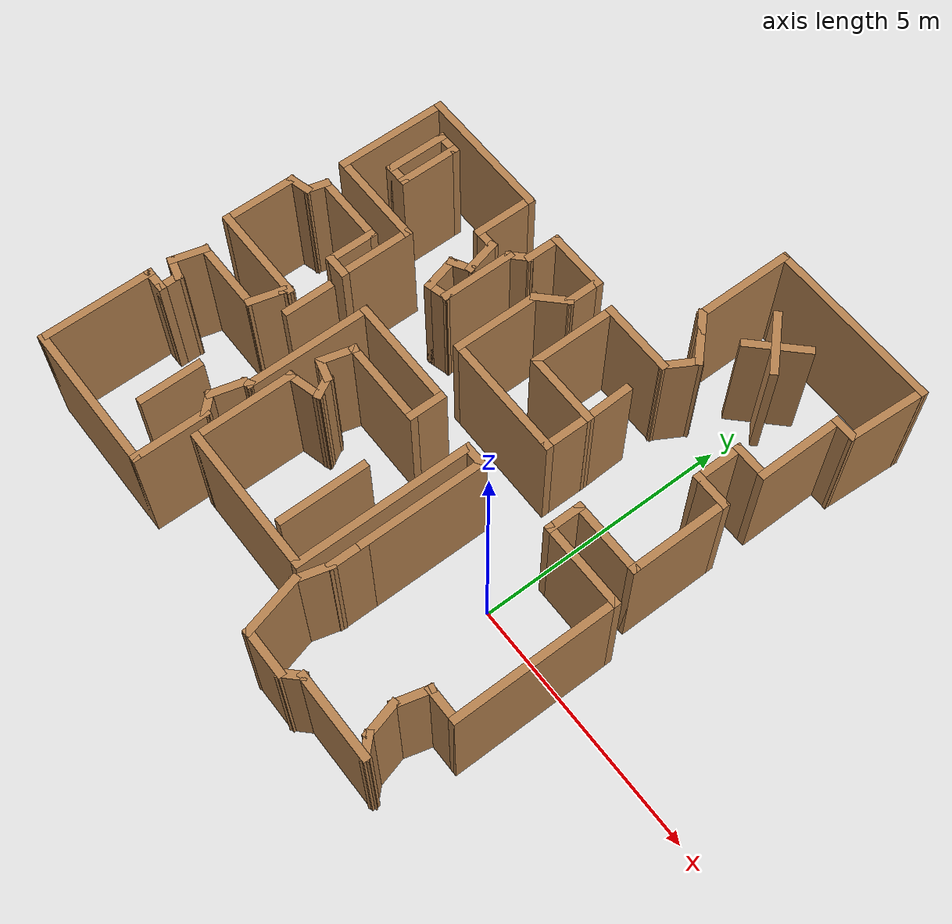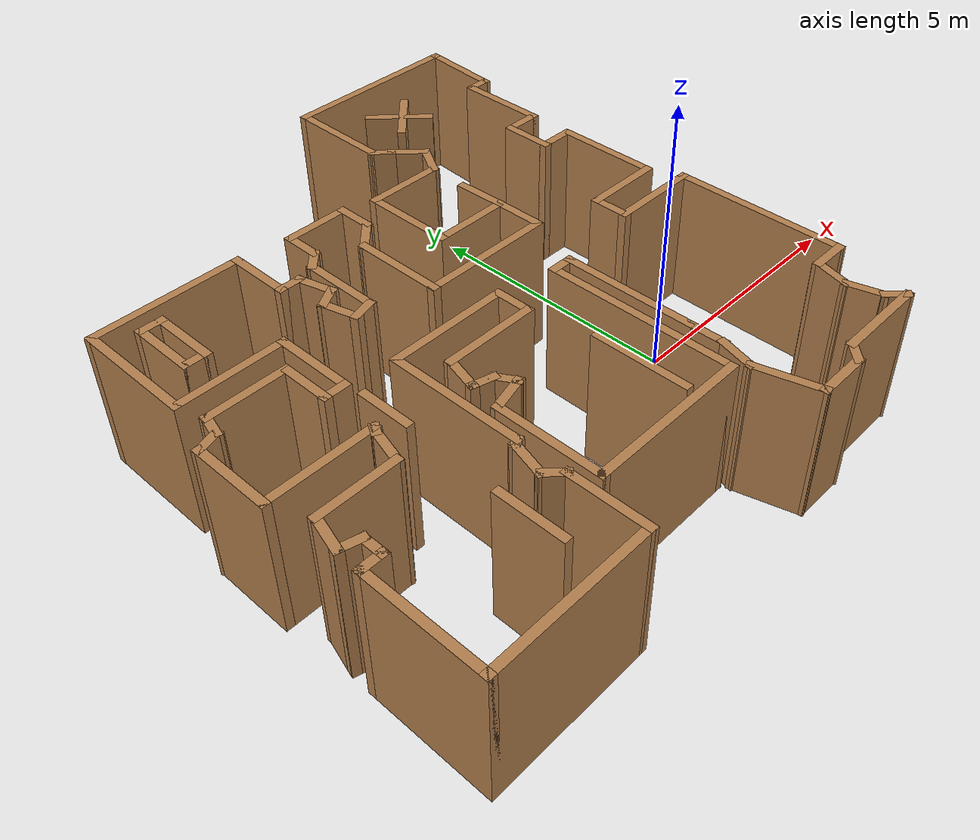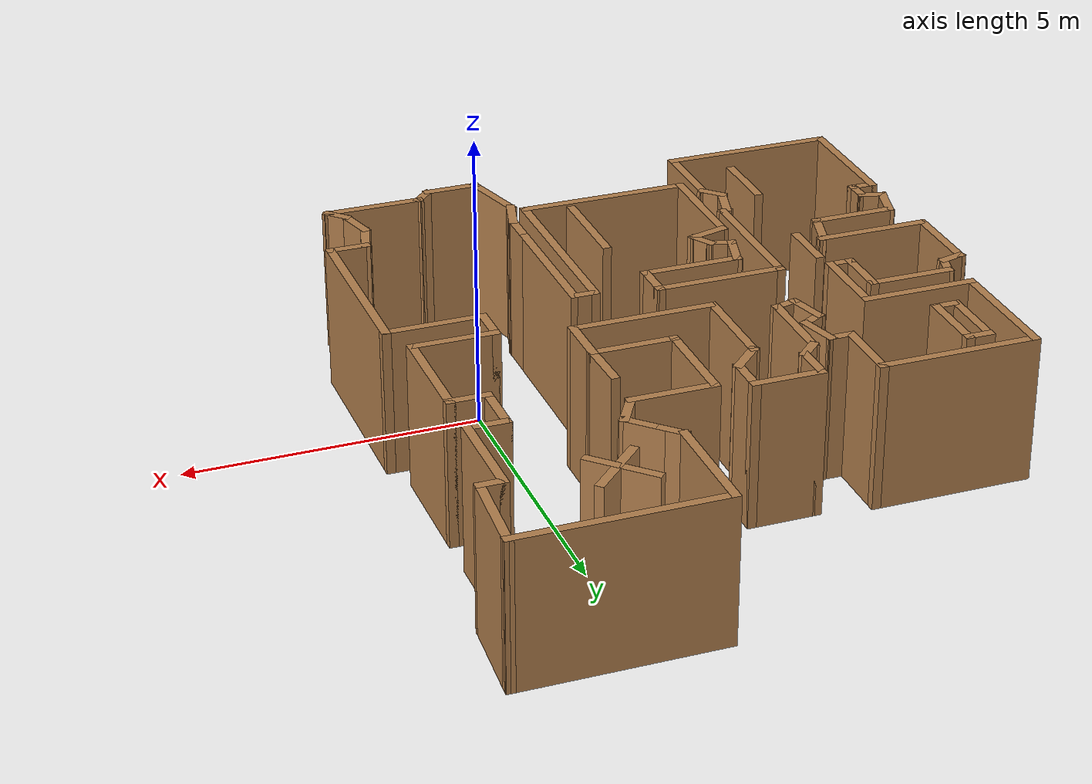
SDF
<sdf version="1.6">
 <model name="map_22">
  <pose>-2.87672 1.83975 0 0 -0 0</pose>
  <link name="Wall_101">
   <collision name="Wall_101_Collision">
    <geometry><box><size>1 0.15 2.5</size></box></geometry>
    <pose>0 0 1.25 0 -0 0</pose>
   </collision>
   <visual name="Wall_101_Visual">
    <pose>0 0 1.25 0 -0 0</pose>
    <geometry><box><size>1 0.15 2.5</size></box></geometry>
    <material>
     <script><uri>file://media/materials/scripts/gazebo.material</uri><name>Gazebo/Wood</name></script>
     <ambient>1 1 1 1</ambient>
    </material>
    <meta><layer>0</layer></meta>
   </visual>
   <pose>-2.71535 -1.36407 0 0 -0 -1.5708</pose>
  </link>
  <link name="Wall_103">
   <collision name="Wall_103_Collision">
    <geometry><box><size>1.25 0.15 2.5</size></box></geometry>
    <pose>0 0 1.25 0 -0 0</pose>
   </collision>
   <visual name="Wall_103_Visual">
    <pose>0 0 1.25 0 -0 0</pose>
    <geometry><box><size>1.25 0.15 2.5</size></box></geometry>
    <material>
     <script><uri>file://media/materials/scripts/gazebo.material</uri><name>Gazebo/Wood</name></script>
     <ambient>1 1 1 1</ambient>
    </material>
    <meta><layer>0</layer></meta>
   </visual>
   <pose>-2.76855 -4.09589 0 0 -0 -1.5708</pose>
  </link>
  <link name="Wall_105">
   <collision name="Wall_105_Collision">
    <geometry><box><size>1.75 0.15 2.5</size></box></geometry>
    <pose>0 0 1.25 0 -0 0</pose>
   </collision>
   <visual name="Wall_105_Visual">
    <pose>0 0 1.25 0 -0 0</pose>
    <geometry><box><size>1.75 0.15 2.5</size></box></geometry>
    <material>
     <script><uri>file://media/materials/scripts/gazebo.material</uri><name>Gazebo/Wood</name></script>
     <ambient>1 1 1 1</ambient>
    </material>
    <meta><layer>0</layer></meta>
   </visual>
   <pose>0.423476 -3.28189 0 0 -0 -1.5708</pose>
  </link>
  <link name="Wall_107">
   <collision name="Wall_107_Collision">
    <geometry><box><size>0.987992 0.15 2.5</size></box></geometry>
    <pose>0 0 1.25 0 -0 0</pose>
   </collision>
   <visual name="Wall_107_Visual">
    <pose>0 0 1.25 0 -0 0</pose>
    <geometry><box><size>0.987992 0.15 2.5</size></box></geometry>
    <material>
     <script><uri>file://media/materials/scripts/gazebo.material</uri><name>Gazebo/Wood</name></script>
     <ambient>1 1 1 1</ambient>
    </material>
    <meta><layer>0</layer></meta>
   </visual>
   <pose>1.92687 1.35538 0 0 -0 -1.53789</pose>
  </link>
  <link name="Wall_109">
   <collision name="Wall_109_Collision">
    <geometry><box><size>1.25 0.15 2.5</size></box></geometry>
    <pose>0 0 1.25 0 -0 0</pose>
   </collision>
   <visual name="Wall_109_Visual">
    <pose>0 0 1.25 0 -0 0</pose>
    <geometry><box><size>1.25 0.15 2.5</size></box></geometry>
    <material>
     <script><uri>file://media/materials/scripts/gazebo.material</uri><name>Gazebo/Wood</name></script>
     <ambient>1 1 1 1</ambient>
    </material>
    <meta><layer>0</layer></meta>
   </visual>
   <pose>-4.04536 1.91575 0 0 -0 -1.5708</pose>
  </link>
  <link name="Wall_11">
   <collision name="Wall_11_Collision">
    <geometry><box><size>1.5 0.15 2.5</size></box></geometry>
    <pose>0 0 1.25 0 -0 0</pose>
   </collision>
   <visual name="Wall_11_Visual">
    <pose>0 0 1.25 0 -0 0</pose>
    <geometry><box><size>1.5 0.15 2.5</size></box></geometry>
    <material>
     <script><uri>file://media/materials/scripts/gazebo.material</uri><name>Gazebo/Wood</name></script>
     <ambient>1 1 1 1</ambient>
    </material>
    <meta><layer>0</layer></meta>
   </visual>
   <pose>1.26566 2.53661 0 0 -0 3.14159</pose>
  </link>
  <link name="Wall_110">
   <collision name="Wall_110_Collision">
    <geometry><box><size>0.5 0.15 2.5</size></box></geometry>
    <pose>0 0 1.25 0 -0 0</pose>
   </collision>
   <visual name="Wall_110_Visual">
    <pose>0 0 1.25 0 -0 0</pose>
    <geometry><box><size>0.5 0.15 2.5</size></box></geometry>
    <material>
     <script><uri>file://media/materials/scripts/gazebo.material</uri><name>Gazebo/Wood</name></script>
     <ambient>1 1 1 1</ambient>
    </material>
    <meta><layer>0</layer></meta>
   </visual>
   <pose>-3.87036 1.36575 0 0 -0 0</pose>
  </link>
  <link name="Wall_111">
   <collision name="Wall_111_Collision">
    <geometry><box><size>1.25 0.15 2.5</size></box></geometry>
    <pose>0 0 1.25 0 -0 0</pose>
   </collision>
   <visual name="Wall_111_Visual">
    <pose>0 0 1.25 0 -0 0</pose>
    <geometry><box><size>1.25 0.15 2.5</size></box></geometry>
    <material>
     <script><uri>file://media/materials/scripts/gazebo.material</uri><name>Gazebo/Wood</name></script>
     <ambient>1 1 1 1</ambient>
    </material>
    <meta><layer>0</layer></meta>
   </visual>
   <pose>-3.69536 1.91575 0 0 -0 1.5708</pose>
  </link>
  <link name="Wall_112">
   <collision name="Wall_112_Collision">
    <geometry><box><size>0.5 0.15 2.5</size></box></geometry>
    <pose>0 0 1.25 0 -0 0</pose>
   </collision>
   <visual name="Wall_112_Visual">
    <pose>0 0 1.25 0 -0 0</pose>
    <geometry><box><size>0.5 0.15 2.5</size></box></geometry>
    <material>
     <script><uri>file://media/materials/scripts/gazebo.material</uri><name>Gazebo/Wood</name></script>
     <ambient>1 1 1 1</ambient>
    </material>
    <meta><layer>0</layer></meta>
   </visual>
   <pose>-3.87036 2.46575 0 0 -0 3.14159</pose>
  </link>
  <link name="Wall_114">
   <collision name="Wall_114_Collision">
    <geometry><box><size>1.25 0.15 2.5</size></box></geometry>
    <pose>0 0 1.25 0 -0 0</pose>
   </collision>
   <visual name="Wall_114_Visual">
    <pose>0 0 1.25 0 -0 0</pose>
    <geometry><box><size>1.25 0.15 2.5</size></box></geometry>
    <material>
     <script><uri>file://media/materials/scripts/gazebo.material</uri><name>Gazebo/Wood</name></script>
     <ambient>1 1 1 1</ambient>
    </material>
    <meta><layer>0</layer></meta>
   </visual>
   <pose>2.82759 4.28466 0 0 -0 -2.35619</pose>
  </link>
  <link name="Wall_116">
   <collision name="Wall_116_Collision">
    <geometry><box><size>1.25 0.15 2.5</size></box></geometry>
    <pose>0 0 1.25 0 -0 0</pose>
   </collision>
   <visual name="Wall_116_Visual">
    <pose>0 0 1.25 0 -0 0</pose>
    <geometry><box><size>1.25 0.15 2.5</size></box></geometry>
    <material>
     <script><uri>file://media/materials/scripts/gazebo.material</uri><name>Gazebo/Wood</name></script>
     <ambient>1 1 1 1</ambient>
    </material>
    <meta><layer>0</layer></meta>
   </visual>
   <pose>2.7542 4.31126 0 0 -0 -0.785398</pose>
  </link>
  <link name="Wall_12">
   <collision name="Wall_12_Collision">
    <geometry><box><size>1.75 0.15 2.5</size></box></geometry>
    <pose>0 0 1.25 0 -0 0</pose>
   </collision>
   <visual name="Wall_12_Visual">
    <pose>0 0 1.25 0 -0 0</pose>
    <geometry><box><size>1.75 0.15 2.5</size></box></geometry>
    <material>
     <script><uri>file://media/materials/scripts/gazebo.material</uri><name>Gazebo/Wood</name></script>
     <ambient>1 1 1 1</ambient>
    </material>
    <meta><layer>0</layer></meta>
   </visual>
   <pose>0.590661 1.73661 0 0 -0 -1.5708</pose>
  </link>
  <link name="Wall_13">
   <collision name="Wall_13_Collision">
    <geometry><box><size>1.5 0.15 2.5</size></box></geometry>
    <pose>0 0 1.25 0 -0 0</pose>
   </collision>
   <visual name="Wall_13_Visual">
    <pose>0 0 1.25 0 -0 0</pose>
    <geometry><box><size>1.5 0.15 2.5</size></box></geometry>
    <material>
     <script><uri>file://media/materials/scripts/gazebo.material</uri><name>Gazebo/Wood</name></script>
     <ambient>1 1 1 1</ambient>
    </material>
    <meta><layer>0</layer></meta>
   </visual>
   <pose>1.26566 0.936607 0 0 -0 0</pose>
  </link>
  <link name="Wall_14">
   <collision name="Wall_14_Collision">
    <geometry><box><size>1 0.15 2.5</size></box></geometry>
    <pose>0 0 1.25 0 -0 0</pose>
   </collision>
   <visual name="Wall_14_Visual">
    <pose>0 0 1.25 0 -0 0</pose>
    <geometry><box><size>1 0.15 2.5</size></box></geometry>
    <material>
     <script><uri>file://media/materials/scripts/gazebo.material</uri><name>Gazebo/Wood</name></script>
     <ambient>1 1 1 1</ambient>
    </material>
    <meta><layer>0</layer></meta>
   </visual>
   <pose>1.94066 0.511607 0 0 -0 -1.5708</pose>
  </link>
  <link name="Wall_15">
   <collision name="Wall_15_Collision">
    <geometry><box><size>2.5 0.15 2.5</size></box></geometry>
    <pose>0 0 1.25 0 -0 0</pose>
   </collision>
   <visual name="Wall_15_Visual">
    <pose>0 0 1.25 0 -0 0</pose>
    <geometry><box><size>2.5 0.15 2.5</size></box></geometry>
    <material>
     <script><uri>file://media/materials/scripts/gazebo.material</uri><name>Gazebo/Wood</name></script>
     <ambient>1 1 1 1</ambient>
    </material>
    <meta><layer>0</layer></meta>
   </visual>
   <pose>0.765661 0.086607 0 0 -0 3.14159</pose>
  </link>
  <link name="Wall_18">
   <collision name="Wall_18_Collision">
    <geometry><box><size>1.75 0.15 2.5</size></box></geometry>
    <pose>0 0 1.25 0 -0 0</pose>
   </collision>
   <visual name="Wall_18_Visual">
    <pose>0 0 1.25 0 -0 0</pose>
    <geometry><box><size>1.75 0.15 2.5</size></box></geometry>
    <material>
     <script><uri>file://media/materials/scripts/gazebo.material</uri><name>Gazebo/Wood</name></script>
     <ambient>1 1 1 1</ambient>
    </material>
    <meta><layer>0</layer></meta>
   </visual>
   <pose>-0.409339 0.886607 0 0 -0 1.5708</pose>
  </link>
  <link name="Wall_19">
   <collision name="Wall_19_Collision">
    <geometry><box><size>0.75 0.15 2.5</size></box></geometry>
    <pose>0 0 1.25 0 -0 0</pose>
   </collision>
   <visual name="Wall_19_Visual">
    <pose>0 0 1.25 0 -0 0</pose>
    <geometry><box><size>0.75 0.15 2.5</size></box></geometry>
    <material>
     <script><uri>file://media/materials/scripts/gazebo.material</uri><name>Gazebo/Wood</name></script>
     <ambient>1 1 1 1</ambient>
    </material>
    <meta><layer>0</layer></meta>
   </visual>
   <pose>-0.197207 1.89874 0 0 -0 0.785398</pose>
  </link>
  <link name="Wall_20">
   <collision name="Wall_20_Collision">
    <geometry><box><size>0.75 0.15 2.5</size></box></geometry>
    <pose>0 0 1.25 0 -0 0</pose>
   </collision>
   <visual name="Wall_20_Visual">
    <pose>0 0 1.25 0 -0 0</pose>
    <geometry><box><size>0.75 0.15 2.5</size></box></geometry>
    <material>
     <script><uri>file://media/materials/scripts/gazebo.material</uri><name>Gazebo/Wood</name></script>
     <ambient>1 1 1 1</ambient>
    </material>
    <meta><layer>0</layer></meta>
   </visual>
   <pose>0.014925 2.41087 0 0 -0 1.5708</pose>
  </link>
  <link name="Wall_21">
   <collision name="Wall_21_Collision">
    <geometry><box><size>1.25 0.15 2.5</size></box></geometry>
    <pose>0 0 1.25 0 -0 0</pose>
   </collision>
   <visual name="Wall_21_Visual">
    <pose>0 0 1.25 0 -0 0</pose>
    <geometry><box><size>1.25 0.15 2.5</size></box></geometry>
    <material>
     <script><uri>file://media/materials/scripts/gazebo.material</uri><name>Gazebo/Wood</name></script>
     <ambient>1 1 1 1</ambient>
    </material>
    <meta><layer>0</layer></meta>
   </visual>
   <pose>-0.535075 2.71087 0 0 -0 3.14159</pose>
  </link>
  <link name="Wall_22">
   <collision name="Wall_22_Collision">
    <geometry><box><size>0.75 0.15 2.5</size></box></geometry>
    <pose>0 0 1.25 0 -0 0</pose>
   </collision>
   <visual name="Wall_22_Visual">
    <pose>0 0 1.25 0 -0 0</pose>
    <geometry><box><size>0.75 0.15 2.5</size></box></geometry>
    <material>
     <script><uri>file://media/materials/scripts/gazebo.material</uri><name>Gazebo/Wood</name></script>
     <ambient>1 1 1 1</ambient>
    </material>
    <meta><layer>0</layer></meta>
   </visual>
   <pose>-1.08508 2.41087 0 0 -0 -1.5708</pose>
  </link>
  <link name="Wall_23">
   <collision name="Wall_23_Collision">
    <geometry><box><size>0.5 0.15 2.5</size></box></geometry>
    <pose>0 0 1.25 0 -0 0</pose>
   </collision>
   <visual name="Wall_23_Visual">
    <pose>0 0 1.25 0 -0 0</pose>
    <geometry><box><size>0.5 0.15 2.5</size></box></geometry>
    <material>
     <script><uri>file://media/materials/scripts/gazebo.material</uri><name>Gazebo/Wood</name></script>
     <ambient>1 1 1 1</ambient>
    </material>
    <meta><layer>0</layer></meta>
   </visual>
   <pose>-1.20882 1.98713 0 0 -0 -2.35619</pose>
  </link>
  <link name="Wall_24">
   <collision name="Wall_24_Collision">
    <geometry><box><size>1.5 0.15 2.5</size></box></geometry>
    <pose>0 0 1.25 0 -0 0</pose>
   </collision>
   <visual name="Wall_24_Visual">
    <pose>0 0 1.25 0 -0 0</pose>
    <geometry><box><size>1.5 0.15 2.5</size></box></geometry>
    <material>
     <script><uri>file://media/materials/scripts/gazebo.material</uri><name>Gazebo/Wood</name></script>
     <ambient>1 1 1 1</ambient>
    </material>
    <meta><layer>0</layer></meta>
   </visual>
   <pose>-1.33256 1.18838 0 0 -0 -1.5708</pose>
  </link>
  <link name="Wall_25">
   <collision name="Wall_25_Collision">
    <geometry><box><size>0.5 0.15 2.5</size></box></geometry>
    <pose>0 0 1.25 0 -0 0</pose>
   </collision>
   <visual name="Wall_25_Visual">
    <pose>0 0 1.25 0 -0 0</pose>
    <geometry><box><size>0.5 0.15 2.5</size></box></geometry>
    <material>
     <script><uri>file://media/materials/scripts/gazebo.material</uri><name>Gazebo/Wood</name></script>
     <ambient>1 1 1 1</ambient>
    </material>
    <meta><layer>0</layer></meta>
   </visual>
   <pose>-1.5016 0.468091 0 0 -0 -2.87979</pose>
  </link>
  <link name="Wall_26">
   <collision name="Wall_26_Collision">
    <geometry><box><size>0.75 0.15 2.5</size></box></geometry>
    <pose>0 0 1.25 0 -0 0</pose>
   </collision>
   <visual name="Wall_26_Visual">
    <pose>0 0 1.25 0 -0 0</pose>
    <geometry><box><size>0.75 0.15 2.5</size></box></geometry>
    <material>
     <script><uri>file://media/materials/scripts/gazebo.material</uri><name>Gazebo/Wood</name></script>
     <ambient>1 1 1 1</ambient>
    </material>
    <meta><layer>0</layer></meta>
   </visual>
   <pose>-1.74828 0.712575 0 0 -0 1.8326</pose>
  </link>
  <link name="Wall_27">
   <collision name="Wall_27_Collision">
    <geometry><box><size>0.5 0.15 2.5</size></box></geometry>
    <pose>0 0 1.25 0 -0 0</pose>
   </collision>
   <visual name="Wall_27_Visual">
    <pose>0 0 1.25 0 -0 0</pose>
    <geometry><box><size>0.5 0.15 2.5</size></box></geometry>
    <material>
     <script><uri>file://media/materials/scripts/gazebo.material</uri><name>Gazebo/Wood</name></script>
     <ambient>1 1 1 1</ambient>
    </material>
    <meta><layer>0</layer></meta>
   </visual>
   <pose>-1.67437 1.08985 0 0 -0 0.523599</pose>
  </link>
  <link name="Wall_28">
   <collision name="Wall_28_Collision">
    <geometry><box><size>0.75 0.15 2.5</size></box></geometry>
    <pose>0 0 1.25 0 -0 0</pose>
   </collision>
   <visual name="Wall_28_Visual">
    <pose>0 0 1.25 0 -0 0</pose>
    <geometry><box><size>0.75 0.15 2.5</size></box></geometry>
    <material>
     <script><uri>file://media/materials/scripts/gazebo.material</uri><name>Gazebo/Wood</name></script>
     <ambient>1 1 1 1</ambient>
    </material>
    <meta><layer>0</layer></meta>
   </visual>
   <pose>-1.60047 1.46713 0 0 -0 1.8326</pose>
  </link>
  <link name="Wall_29">
   <collision name="Wall_29_Collision">
    <geometry><box><size>0.5 0.15 2.5</size></box></geometry>
    <pose>0 0 1.25 0 -0 0</pose>
   </collision>
   <visual name="Wall_29_Visual">
    <pose>0 0 1.25 0 -0 0</pose>
    <geometry><box><size>0.5 0.15 2.5</size></box></geometry>
    <material>
     <script><uri>file://media/materials/scripts/gazebo.material</uri><name>Gazebo/Wood</name></script>
     <ambient>1 1 1 1</ambient>
    </material>
    <meta><layer>0</layer></meta>
   </visual>
   <pose>-1.85311 1.75691 0 0 -0 3.14159</pose>
  </link>
  <link name="Wall_30">
   <collision name="Wall_30_Collision">
    <geometry><box><size>1.25 0.15 2.5</size></box></geometry>
    <pose>0 0 1.25 0 -0 0</pose>
   </collision>
   <visual name="Wall_30_Visual">
    <pose>0 0 1.25 0 -0 0</pose>
    <geometry><box><size>1.25 0.15 2.5</size></box></geometry>
    <material>
     <script><uri>file://media/materials/scripts/gazebo.material</uri><name>Gazebo/Wood</name></script>
     <ambient>1 1 1 1</ambient>
    </material>
    <meta><layer>0</layer></meta>
   </visual>
   <pose>-2.02811 2.30691 0 0 -0 1.5708</pose>
  </link>
  <link name="Wall_31">
   <collision name="Wall_31_Collision">
    <geometry><box><size>2.75 0.15 2.5</size></box></geometry>
    <pose>0 0 1.25 0 -0 0</pose>
   </collision>
   <visual name="Wall_31_Visual">
    <pose>0 0 1.25 0 -0 0</pose>
    <geometry><box><size>2.75 0.15 2.5</size></box></geometry>
    <material>
     <script><uri>file://media/materials/scripts/gazebo.material</uri><name>Gazebo/Wood</name></script>
     <ambient>1 1 1 1</ambient>
    </material>
    <meta><layer>0</layer></meta>
   </visual>
   <pose>-3.32811 2.85691 0 0 -0 3.14159</pose>
  </link>
  <link name="Wall_34">
   <collision name="Wall_34_Collision">
    <geometry><box><size>2.25 0.15 2.5</size></box></geometry>
    <pose>0 0 1.25 0 -0 0</pose>
   </collision>
   <visual name="Wall_34_Visual">
    <pose>0 0 1.25 0 -0 0</pose>
    <geometry><box><size>2.25 0.15 2.5</size></box></geometry>
    <material>
     <script><uri>file://media/materials/scripts/gazebo.material</uri><name>Gazebo/Wood</name></script>
     <ambient>1 1 1 1</ambient>
    </material>
    <meta><layer>0</layer></meta>
   </visual>
   <pose>-4.62811 1.80691 0 0 -0 -1.5708</pose>
  </link>
  <link name="Wall_35">
   <collision name="Wall_35_Collision">
    <geometry><box><size>2 0.15 2.5</size></box></geometry>
    <pose>0 0 1.25 0 -0 0</pose>
   </collision>
   <visual name="Wall_35_Visual">
    <pose>0 0 1.25 0 -0 0</pose>
    <geometry><box><size>2 0.15 2.5</size></box></geometry>
    <material>
     <script><uri>file://media/materials/scripts/gazebo.material</uri><name>Gazebo/Wood</name></script>
     <ambient>1 1 1 1</ambient>
    </material>
    <meta><layer>0</layer></meta>
   </visual>
   <pose>-3.70311 0.756908 0 0 -0 0</pose>
  </link>
  <link name="Wall_36">
   <collision name="Wall_36_Collision">
    <geometry><box><size>1.5 0.15 2.5</size></box></geometry>
    <pose>0 0 1.25 0 -0 0</pose>
   </collision>
   <visual name="Wall_36_Visual">
    <pose>0 0 1.25 0 -0 0</pose>
    <geometry><box><size>1.5 0.15 2.5</size></box></geometry>
    <material>
     <script><uri>file://media/materials/scripts/gazebo.material</uri><name>Gazebo/Wood</name></script>
     <ambient>1 1 1 1</ambient>
    </material>
    <meta><layer>0</layer></meta>
   </visual>
   <pose>-2.77811 0.081908 0 0 -0 -1.5708</pose>
  </link>
  <link name="Wall_37">
   <collision name="Wall_37_Collision">
    <geometry><box><size>0.5 0.15 2.5</size></box></geometry>
    <pose>0 0 1.25 0 -0 0</pose>
   </collision>
   <visual name="Wall_37_Visual">
    <pose>0 0 1.25 0 -0 0</pose>
    <geometry><box><size>0.5 0.15 2.5</size></box></geometry>
    <material>
     <script><uri>file://media/materials/scripts/gazebo.material</uri><name>Gazebo/Wood</name></script>
     <ambient>1 1 1 1</ambient>
    </material>
    <meta><layer>0</layer></meta>
   </visual>
   <pose>-2.95311 -0.593092 0 0 -0 3.14159</pose>
  </link>
  <link name="Wall_38">
   <collision name="Wall_38_Collision">
    <geometry><box><size>1 0.15 2.5</size></box></geometry>
    <pose>0 0 1.25 0 -0 0</pose>
   </collision>
   <visual name="Wall_38_Visual">
    <pose>0 0 1.25 0 -0 0</pose>
    <geometry><box><size>1 0.15 2.5</size></box></geometry>
    <material>
     <script><uri>file://media/materials/scripts/gazebo.material</uri><name>Gazebo/Wood</name></script>
     <ambient>1 1 1 1</ambient>
    </material>
    <meta><layer>0</layer></meta>
   </visual>
   <pose>-3.12811 -0.168092 0 0 -0 1.5708</pose>
  </link>
  <link name="Wall_39">
   <collision name="Wall_39_Collision">
    <geometry><box><size>1.5 0.15 2.5</size></box></geometry>
    <pose>0 0 1.25 0 -0 0</pose>
   </collision>
   <visual name="Wall_39_Visual">
    <pose>0 0 1.25 0 -0 0</pose>
    <geometry><box><size>1.5 0.15 2.5</size></box></geometry>
    <material>
     <script><uri>file://media/materials/scripts/gazebo.material</uri><name>Gazebo/Wood</name></script>
     <ambient>1 1 1 1</ambient>
    </material>
    <meta><layer>0</layer></meta>
   </visual>
   <pose>-3.80311 0.256908 0 0 -0 3.14159</pose>
  </link>
  <link name="Wall_4">
   <collision name="Wall_4_Collision">
    <geometry><box><size>3.5 0.15 2.5</size></box></geometry>
    <pose>0 0 1.25 0 -0 0</pose>
   </collision>
   <visual name="Wall_4_Visual">
    <pose>0 0 1.25 0 -0 0</pose>
    <geometry><box><size>3.5 0.15 2.5</size></box></geometry>
    <material>
     <script><uri>file://media/materials/scripts/gazebo.material</uri><name>Gazebo/Wood</name></script>
     <ambient>1 1 1 1</ambient>
    </material>
    <meta><layer>0</layer></meta>
   </visual>
   <pose>3.24391 5.57797 0 0 -0 3.14159</pose>
  </link>
  <link name="Wall_40">
   <collision name="Wall_40_Collision">
    <geometry><box><size>0.5 0.15 2.5</size></box></geometry>
    <pose>0 0 1.25 0 -0 0</pose>
   </collision>
   <visual name="Wall_40_Visual">
    <pose>0 0 1.25 0 -0 0</pose>
    <geometry><box><size>0.5 0.15 2.5</size></box></geometry>
    <material>
     <script><uri>file://media/materials/scripts/gazebo.material</uri><name>Gazebo/Wood</name></script>
     <ambient>1 1 1 1</ambient>
    </material>
    <meta><layer>0</layer></meta>
   </visual>
   <pose>-4.5234 0.087871 0 0 -0 -1.8326</pose>
  </link>
  <link name="Wall_41">
   <collision name="Wall_41_Collision">
    <geometry><box><size>0.5 0.15 2.5</size></box></geometry>
    <pose>0 0 1.25 0 -0 0</pose>
   </collision>
   <visual name="Wall_41_Visual">
    <pose>0 0 1.25 0 -0 0</pose>
    <geometry><box><size>0.5 0.15 2.5</size></box></geometry>
    <material>
     <script><uri>file://media/materials/scripts/gazebo.material</uri><name>Gazebo/Wood</name></script>
     <ambient>1 1 1 1</ambient>
    </material>
    <meta><layer>0</layer></meta>
   </visual>
   <pose>-4.73773 -0.126459 0 0 -0 -2.87979</pose>
  </link>
  <link name="Wall_42">
   <collision name="Wall_42_Collision">
    <geometry><box><size>1.5 0.15 2.5</size></box></geometry>
    <pose>0 0 1.25 0 -0 0</pose>
   </collision>
   <visual name="Wall_42_Visual">
    <pose>0 0 1.25 0 -0 0</pose>
    <geometry><box><size>1.5 0.15 2.5</size></box></geometry>
    <material>
     <script><uri>file://media/materials/scripts/gazebo.material</uri><name>Gazebo/Wood</name></script>
     <ambient>1 1 1 1</ambient>
    </material>
    <meta><layer>0</layer></meta>
   </visual>
   <pose>-4.90677 -0.846753 0 0 -0 -1.5708</pose>
  </link>
  <link name="Wall_43">
   <collision name="Wall_43_Collision">
    <geometry><box><size>2 0.15 2.5</size></box></geometry>
    <pose>0 0 1.25 0 -0 0</pose>
   </collision>
   <visual name="Wall_43_Visual">
    <pose>0 0 1.25 0 -0 0</pose>
    <geometry><box><size>2 0.15 2.5</size></box></geometry>
    <material>
     <script><uri>file://media/materials/scripts/gazebo.material</uri><name>Gazebo/Wood</name></script>
     <ambient>1 1 1 1</ambient>
    </material>
    <meta><layer>0</layer></meta>
   </visual>
   <pose>-3.98177 -1.52175 0 0 -0 0</pose>
  </link>
  <link name="Wall_44">
   <collision name="Wall_44_Collision">
    <geometry><box><size>0.25 0.15 2.5</size></box></geometry>
    <pose>0 0 1.25 0 -0 0</pose>
   </collision>
   <visual name="Wall_44_Visual">
    <pose>0 0 1.25 0 -0 0</pose>
    <geometry><box><size>0.25 0.15 2.5</size></box></geometry>
    <material>
     <script><uri>file://media/materials/scripts/gazebo.material</uri><name>Gazebo/Wood</name></script>
     <ambient>1 1 1 1</ambient>
    </material>
    <meta><layer>0</layer></meta>
   </visual>
   <pose>-3.08177 -1.56505 0 0 -0 -2.0944</pose>
  </link>
  <link name="Wall_45">
   <collision name="Wall_45_Collision">
    <geometry><box><size>0.75 0.15 2.5</size></box></geometry>
    <pose>0 0 1.25 0 -0 0</pose>
   </collision>
   <visual name="Wall_45_Visual">
    <pose>0 0 1.25 0 -0 0</pose>
    <geometry><box><size>0.75 0.15 2.5</size></box></geometry>
    <material>
     <script><uri>file://media/materials/scripts/gazebo.material</uri><name>Gazebo/Wood</name></script>
     <ambient>1 1 1 1</ambient>
    </material>
    <meta><layer>0</layer></meta>
   </visual>
   <pose>-3.18442 -1.89813 0 0 -0 -1.8326</pose>
  </link>
  <link name="Wall_46">
   <collision name="Wall_46_Collision">
    <geometry><box><size>1.5 0.15 2.5</size></box></geometry>
    <pose>0 0 1.25 0 -0 0</pose>
   </collision>
   <visual name="Wall_46_Visual">
    <pose>0 0 1.25 0 -0 0</pose>
    <geometry><box><size>1.5 0.15 2.5</size></box></geometry>
    <material>
     <script><uri>file://media/materials/scripts/gazebo.material</uri><name>Gazebo/Wood</name></script>
     <ambient>1 1 1 1</ambient>
    </material>
    <meta><layer>0</layer></meta>
   </visual>
   <pose>-3.93706 -2.18791 0 0 -0 3.14159</pose>
  </link>
  <link name="Wall_47">
   <collision name="Wall_47_Collision">
    <geometry><box><size>0.75 0.15 2.5</size></box></geometry>
    <pose>0 0 1.25 0 -0 0</pose>
   </collision>
   <visual name="Wall_47_Visual">
    <pose>0 0 1.25 0 -0 0</pose>
    <geometry><box><size>0.75 0.15 2.5</size></box></geometry>
    <material>
     <script><uri>file://media/materials/scripts/gazebo.material</uri><name>Gazebo/Wood</name></script>
     <ambient>1 1 1 1</ambient>
    </material>
    <meta><layer>0</layer></meta>
   </visual>
   <pose>-4.68971 -2.47769 0 0 -0 -1.8326</pose>
  </link>
  <link name="Wall_48">
   <collision name="Wall_48_Collision">
    <geometry><box><size>0.5 0.15 2.5</size></box></geometry>
    <pose>0 0 1.25 0 -0 0</pose>
   </collision>
   <visual name="Wall_48_Visual">
    <pose>0 0 1.25 0 -0 0</pose>
    <geometry><box><size>0.5 0.15 2.5</size></box></geometry>
    <material>
     <script><uri>file://media/materials/scripts/gazebo.material</uri><name>Gazebo/Wood</name></script>
     <ambient>1 1 1 1</ambient>
    </material>
    <meta><layer>0</layer></meta>
   </visual>
   <pose>-4.59832 -2.81276 0 0 -0 -0.261799</pose>
  </link>
  <link name="Wall_49">
   <collision name="Wall_49_Collision">
    <geometry><box><size>0.5 0.15 2.5</size></box></geometry>
    <pose>0 0 1.25 0 -0 0</pose>
   </collision>
   <visual name="Wall_49_Visual">
    <pose>0 0 1.25 0 -0 0</pose>
    <geometry><box><size>0.5 0.15 2.5</size></box></geometry>
    <material>
     <script><uri>file://media/materials/scripts/gazebo.material</uri><name>Gazebo/Wood</name></script>
     <ambient>1 1 1 1</ambient>
    </material>
    <meta><layer>0</layer></meta>
   </visual>
   <pose>-4.42928 -3.03305 0 0 -0 -1.5708</pose>
  </link>
  <link name="Wall_5">
   <collision name="Wall_5_Collision">
    <geometry><box><size>2 0.15 2.5</size></box></geometry>
    <pose>0 0 1.25 0 -0 0</pose>
   </collision>
   <visual name="Wall_5_Visual">
    <pose>0 0 1.25 0 -0 0</pose>
    <geometry><box><size>2 0.15 2.5</size></box></geometry>
    <material>
     <script><uri>file://media/materials/scripts/gazebo.material</uri><name>Gazebo/Wood</name></script>
     <ambient>1 1 1 1</ambient>
    </material>
    <meta><layer>0</layer></meta>
   </visual>
   <pose>1.56891 4.65297 0 0 -0 -1.5708</pose>
  </link>
  <link name="Wall_50">
   <collision name="Wall_50_Collision">
    <geometry><box><size>0.5 0.15 2.5</size></box></geometry>
    <pose>0 0 1.25 0 -0 0</pose>
   </collision>
   <visual name="Wall_50_Visual">
    <pose>0 0 1.25 0 -0 0</pose>
    <geometry><box><size>0.5 0.15 2.5</size></box></geometry>
    <material>
     <script><uri>file://media/materials/scripts/gazebo.material</uri><name>Gazebo/Wood</name></script>
     <ambient>1 1 1 1</ambient>
    </material>
    <meta><layer>0</layer></meta>
   </visual>
   <pose>-4.60428 -3.20805 0 0 -0 3.14159</pose>
  </link>
  <link name="Wall_53">
   <collision name="Wall_53_Collision">
    <geometry><box><size>2.25 0.15 2.5</size></box></geometry>
    <pose>0 0 1.25 0 -0 0</pose>
   </collision>
   <visual name="Wall_53_Visual">
    <pose>0 0 1.25 0 -0 0</pose>
    <geometry><box><size>2.25 0.15 2.5</size></box></geometry>
    <material>
     <script><uri>file://media/materials/scripts/gazebo.material</uri><name>Gazebo/Wood</name></script>
     <ambient>1 1 1 1</ambient>
    </material>
    <meta><layer>0</layer></meta>
   </visual>
   <pose>-4.77928 -4.25805 0 0 -0 -1.5708</pose>
  </link>
  <link name="Wall_54">
   <collision name="Wall_54_Collision">
    <geometry><box><size>3 0.15 2.5</size></box></geometry>
    <pose>0 0 1.25 0 -0 0</pose>
   </collision>
   <visual name="Wall_54_Visual">
    <pose>0 0 1.25 0 -0 0</pose>
    <geometry><box><size>3 0.15 2.5</size></box></geometry>
    <material>
     <script><uri>file://media/materials/scripts/gazebo.material</uri><name>Gazebo/Wood</name></script>
     <ambient>1 1 1 1</ambient>
    </material>
    <meta><layer>0</layer></meta>
   </visual>
   <pose>-3.35428 -5.30805 0 0 -0 0</pose>
  </link>
  <link name="Wall_55">
   <collision name="Wall_55_Collision">
    <geometry><box><size>1.5 0.15 2.5</size></box></geometry>
    <pose>0 0 1.25 0 -0 0</pose>
   </collision>
   <visual name="Wall_55_Visual">
    <pose>0 0 1.25 0 -0 0</pose>
    <geometry><box><size>1.5 0.15 2.5</size></box></geometry>
    <material>
     <script><uri>file://media/materials/scripts/gazebo.material</uri><name>Gazebo/Wood</name></script>
     <ambient>1 1 1 1</ambient>
    </material>
    <meta><layer>0</layer></meta>
   </visual>
   <pose>-1.92928 -4.63305 0 0 -0 1.5708</pose>
  </link>
  <link name="Wall_56">
   <collision name="Wall_56_Collision">
    <geometry><box><size>0.5 0.15 2.5</size></box></geometry>
    <pose>0 0 1.25 0 -0 0</pose>
   </collision>
   <visual name="Wall_56_Visual">
    <pose>0 0 1.25 0 -0 0</pose>
    <geometry><box><size>0.5 0.15 2.5</size></box></geometry>
    <material>
     <script><uri>file://media/materials/scripts/gazebo.material</uri><name>Gazebo/Wood</name></script>
     <ambient>1 1 1 1</ambient>
    </material>
    <meta><layer>0</layer></meta>
   </visual>
   <pose>-2.05302 -3.83431 0 0 -0 2.35619</pose>
  </link>
  <link name="Wall_57">
   <collision name="Wall_57_Collision">
    <geometry><box><size>0.75 0.15 2.5</size></box></geometry>
    <pose>0 0 1.25 0 -0 0</pose>
   </collision>
   <visual name="Wall_57_Visual">
    <pose>0 0 1.25 0 -0 0</pose>
    <geometry><box><size>0.75 0.15 2.5</size></box></geometry>
    <material>
     <script><uri>file://media/materials/scripts/gazebo.material</uri><name>Gazebo/Wood</name></script>
     <ambient>1 1 1 1</ambient>
    </material>
    <meta><layer>0</layer></meta>
   </visual>
   <pose>-2.09912 -3.42079 0 0 -0 1.309</pose>
  </link>
  <link name="Wall_58">
   <collision name="Wall_58_Collision">
    <geometry><box><size>0.25 0.15 2.5</size></box></geometry>
    <pose>0 0 1.25 0 -0 0</pose>
   </collision>
   <visual name="Wall_58_Visual">
    <pose>0 0 1.25 0 -0 0</pose>
    <geometry><box><size>0.25 0.15 2.5</size></box></geometry>
    <material>
     <script><uri>file://media/materials/scripts/gazebo.material</uri><name>Gazebo/Wood</name></script>
     <ambient>1 1 1 1</ambient>
    </material>
    <meta><layer>0</layer></meta>
   </visual>
   <pose>-1.97818 -3.10601 0 0 -0 0.523599</pose>
  </link>
  <link name="Wall_59">
   <collision name="Wall_59_Collision">
    <geometry><box><size>2.5 0.15 2.5</size></box></geometry>
    <pose>0 0 1.25 0 -0 0</pose>
   </collision>
   <visual name="Wall_59_Visual">
    <pose>0 0 1.25 0 -0 0</pose>
    <geometry><box><size>2.5 0.15 2.5</size></box></geometry>
    <material>
     <script><uri>file://media/materials/scripts/gazebo.material</uri><name>Gazebo/Wood</name></script>
     <ambient>1 1 1 1</ambient>
    </material>
    <meta><layer>0</layer></meta>
   </visual>
   <pose>-1.93487 -1.90601 0 0 -0 1.5708</pose>
  </link>
  <link name="Wall_6">
   <collision name="Wall_6_Collision">
    <geometry><box><size>0.5 0.15 2.5</size></box></geometry>
    <pose>0 0 1.25 0 -0 0</pose>
   </collision>
   <visual name="Wall_6_Visual">
    <pose>0 0 1.25 0 -0 0</pose>
    <geometry><box><size>0.5 0.15 2.5</size></box></geometry>
    <material>
     <script><uri>file://media/materials/scripts/gazebo.material</uri><name>Gazebo/Wood</name></script>
     <ambient>1 1 1 1</ambient>
    </material>
    <meta><layer>0</layer></meta>
   </visual>
   <pose>1.69265 3.60423 0 0 -0 -0.785398</pose>
  </link>
  <link name="Wall_60">
   <collision name="Wall_60_Collision">
    <geometry><box><size>2.25 0.15 2.5</size></box></geometry>
    <pose>0 0 1.25 0 -0 0</pose>
   </collision>
   <visual name="Wall_60_Visual">
    <pose>0 0 1.25 0 -0 0</pose>
    <geometry><box><size>2.25 0.15 2.5</size></box></geometry>
    <material>
     <script><uri>file://media/materials/scripts/gazebo.material</uri><name>Gazebo/Wood</name></script>
     <ambient>1 1 1 1</ambient>
    </material>
    <meta><layer>0</layer></meta>
   </visual>
   <pose>-0.884874 -0.73101 0 0 -0 0</pose>
  </link>
  <link name="Wall_61">
   <collision name="Wall_61_Collision">
    <geometry><box><size>0.75 0.15 2.5</size></box></geometry>
    <pose>0 0 1.25 0 -0 0</pose>
   </collision>
   <visual name="Wall_61_Visual">
    <pose>0 0 1.25 0 -0 0</pose>
    <geometry><box><size>0.75 0.15 2.5</size></box></geometry>
    <material>
     <script><uri>file://media/materials/scripts/gazebo.material</uri><name>Gazebo/Wood</name></script>
     <ambient>1 1 1 1</ambient>
    </material>
    <meta><layer>0</layer></meta>
   </visual>
   <pose>0.165126 -1.03101 0 0 -0 -1.5708</pose>
  </link>
  <link name="Wall_62">
   <collision name="Wall_62_Collision">
    <geometry><box><size>1.75 0.15 2.5</size></box></geometry>
    <pose>0 0 1.25 0 -0 0</pose>
   </collision>
   <visual name="Wall_62_Visual">
    <pose>0 0 1.25 0 -0 0</pose>
    <geometry><box><size>1.75 0.15 2.5</size></box></geometry>
    <material>
     <script><uri>file://media/materials/scripts/gazebo.material</uri><name>Gazebo/Wood</name></script>
     <ambient>1 1 1 1</ambient>
    </material>
    <meta><layer>0</layer></meta>
   </visual>
   <pose>-0.634874 -1.33101 0 0 -0 3.14159</pose>
  </link>
  <link name="Wall_63">
   <collision name="Wall_63_Collision">
    <geometry><box><size>0.75 0.15 2.5</size></box></geometry>
    <pose>0 0 1.25 0 -0 0</pose>
   </collision>
   <visual name="Wall_63_Visual">
    <pose>0 0 1.25 0 -0 0</pose>
    <geometry><box><size>0.75 0.15 2.5</size></box></geometry>
    <material>
     <script><uri>file://media/materials/scripts/gazebo.material</uri><name>Gazebo/Wood</name></script>
     <ambient>1 1 1 1</ambient>
    </material>
    <meta><layer>0</layer></meta>
   </visual>
   <pose>-1.51252 -1.62079 0 0 -0 -1.8326</pose>
  </link>
  <link name="Wall_64">
   <collision name="Wall_64_Collision">
    <geometry><box><size>0.5 0.15 2.5</size></box></geometry>
    <pose>0 0 1.25 0 -0 0</pose>
   </collision>
   <visual name="Wall_64_Visual">
    <pose>0 0 1.25 0 -0 0</pose>
    <geometry><box><size>0.5 0.15 2.5</size></box></geometry>
    <material>
     <script><uri>file://media/materials/scripts/gazebo.material</uri><name>Gazebo/Wood</name></script>
     <ambient>1 1 1 1</ambient>
    </material>
    <meta><layer>0</layer></meta>
   </visual>
   <pose>-1.42113 -1.95586 0 0 -0 -0.261799</pose>
  </link>
  <link name="Wall_65">
   <collision name="Wall_65_Collision">
    <geometry><box><size>0.5 0.15 2.5</size></box></geometry>
    <pose>0 0 1.25 0 -0 0</pose>
   </collision>
   <visual name="Wall_65_Visual">
    <pose>0 0 1.25 0 -0 0</pose>
    <geometry><box><size>0.5 0.15 2.5</size></box></geometry>
    <material>
     <script><uri>file://media/materials/scripts/gazebo.material</uri><name>Gazebo/Wood</name></script>
     <ambient>1 1 1 1</ambient>
    </material>
    <meta><layer>0</layer></meta>
   </visual>
   <pose>-1.16459 -2.15271 0 0 -0 -1.0472</pose>
  </link>
  <link name="Wall_69">
   <collision name="Wall_69_Collision">
    <geometry><box><size>0.75 0.15 2.5</size></box></geometry>
    <pose>0 0 1.25 0 -0 0</pose>
   </collision>
   <visual name="Wall_69_Visual">
    <pose>0 0 1.25 0 -0 0</pose>
    <geometry><box><size>0.75 0.15 2.5</size></box></geometry>
    <material>
     <script><uri>file://media/materials/scripts/gazebo.material</uri><name>Gazebo/Wood</name></script>
     <ambient>1 1 1 1</ambient>
    </material>
    <meta><layer>0</layer></meta>
   </visual>
   <pose>-1.36687 -2.38191 0 0 -0 -2.87979</pose>
  </link>
  <link name="Wall_7">
   <collision name="Wall_7_Collision">
    <geometry><box><size>0.75 0.15 2.5</size></box></geometry>
    <pose>0 0 1.25 0 -0 0</pose>
   </collision>
   <visual name="Wall_7_Visual">
    <pose>0 0 1.25 0 -0 0</pose>
    <geometry><box><size>0.75 0.15 2.5</size></box></geometry>
    <material>
     <script><uri>file://media/materials/scripts/gazebo.material</uri><name>Gazebo/Wood</name></script>
     <ambient>1 1 1 1</ambient>
    </material>
    <meta><layer>0</layer></meta>
   </visual>
   <pose>2.02853 3.26836 0 0 -0 -0.785398</pose>
  </link>
  <link name="Wall_70">
   <collision name="Wall_70_Collision">
    <geometry><box><size>2 0.15 2.5</size></box></geometry>
    <pose>0 0 1.25 0 -0 0</pose>
   </collision>
   <visual name="Wall_70_Visual">
    <pose>0 0 1.25 0 -0 0</pose>
    <geometry><box><size>2 0.15 2.5</size></box></geometry>
    <material>
     <script><uri>file://media/materials/scripts/gazebo.material</uri><name>Gazebo/Wood</name></script>
     <ambient>1 1 1 1</ambient>
    </material>
    <meta><layer>0</layer></meta>
   </visual>
   <pose>-1.65665 -3.38455 0 0 -0 -1.5708</pose>
  </link>
  <link name="Wall_71">
   <collision name="Wall_71_Collision">
    <geometry><box><size>3 0.15 2.5</size></box></geometry>
    <pose>0 0 1.25 0 -0 0</pose>
   </collision>
   <visual name="Wall_71_Visual">
    <pose>0 0 1.25 0 -0 0</pose>
    <geometry><box><size>3 0.15 2.5</size></box></geometry>
    <material>
     <script><uri>file://media/materials/scripts/gazebo.material</uri><name>Gazebo/Wood</name></script>
     <ambient>1 1 1 1</ambient>
    </material>
    <meta><layer>0</layer></meta>
   </visual>
   <pose>-0.231646 -4.30955 0 0 -0 0</pose>
  </link>
  <link name="Wall_72">
   <collision name="Wall_72_Collision">
    <geometry><box><size>3.5 0.15 2.5</size></box></geometry>
    <pose>0 0 1.25 0 -0 0</pose>
   </collision>
   <visual name="Wall_72_Visual">
    <pose>0 0 1.25 0 -0 0</pose>
    <geometry><box><size>3.5 0.15 2.5</size></box></geometry>
    <material>
     <script><uri>file://media/materials/scripts/gazebo.material</uri><name>Gazebo/Wood</name></script>
     <ambient>1 1 1 1</ambient>
    </material>
    <meta><layer>0</layer></meta>
   </visual>
   <pose>1.19335 -2.63455 0 0 -0 1.5708</pose>
  </link>
  <link name="Wall_73">
   <collision name="Wall_73_Collision">
    <geometry><box><size>0.5 0.15 2.5</size></box></geometry>
    <pose>0 0 1.25 0 -0 0</pose>
   </collision>
   <visual name="Wall_73_Visual">
    <pose>0 0 1.25 0 -0 0</pose>
    <geometry><box><size>0.5 0.15 2.5</size></box></geometry>
    <material>
     <script><uri>file://media/materials/scripts/gazebo.material</uri><name>Gazebo/Wood</name></script>
     <ambient>1 1 1 1</ambient>
    </material>
    <meta><layer>0</layer></meta>
   </visual>
   <pose>1.36835 -0.959552 0 0 -0 0</pose>
  </link>
  <link name="Wall_74">
   <collision name="Wall_74_Collision">
    <geometry><box><size>2.5 0.15 2.5</size></box></geometry>
    <pose>0 0 1.25 0 -0 0</pose>
   </collision>
   <visual name="Wall_74_Visual">
    <pose>0 0 1.25 0 -0 0</pose>
    <geometry><box><size>2.5 0.15 2.5</size></box></geometry>
    <material>
     <script><uri>file://media/materials/scripts/gazebo.material</uri><name>Gazebo/Wood</name></script>
     <ambient>1 1 1 1</ambient>
    </material>
    <meta><layer>0</layer></meta>
   </visual>
   <pose>1.54335 -2.13455 0 0 -0 -1.5708</pose>
  </link>
  <link name="Wall_75">
   <collision name="Wall_75_Collision">
    <geometry><box><size>0.75 0.15 2.5</size></box></geometry>
    <pose>0 0 1.25 0 -0 0</pose>
   </collision>
   <visual name="Wall_75_Visual">
    <pose>0 0 1.25 0 -0 0</pose>
    <geometry><box><size>0.75 0.15 2.5</size></box></geometry>
    <material>
     <script><uri>file://media/materials/scripts/gazebo.material</uri><name>Gazebo/Wood</name></script>
     <ambient>1 1 1 1</ambient>
    </material>
    <meta><layer>0</layer></meta>
   </visual>
   <pose>1.54335 -3.60955 0 0 -0 -1.5708</pose>
  </link>
  <link name="Wall_76">
   <collision name="Wall_76_Collision">
    <geometry><box><size>0.75 0.15 2.5</size></box></geometry>
    <pose>0 0 1.25 0 -0 0</pose>
   </collision>
   <visual name="Wall_76_Visual">
    <pose>0 0 1.25 0 -0 0</pose>
    <geometry><box><size>0.75 0.15 2.5</size></box></geometry>
    <material>
     <script><uri>file://media/materials/scripts/gazebo.material</uri><name>Gazebo/Wood</name></script>
     <ambient>1 1 1 1</ambient>
    </material>
    <meta><layer>0</layer></meta>
   </visual>
   <pose>1.46571 -4.19933 0 0 -0 -1.8326</pose>
  </link>
  <link name="Wall_77">
   <collision name="Wall_77_Collision">
    <geometry><box><size>1.25 0.15 2.5</size></box></geometry>
    <pose>0 0 1.25 0 -0 0</pose>
   </collision>
   <visual name="Wall_77_Visual">
    <pose>0 0 1.25 0 -0 0</pose>
    <geometry><box><size>1.25 0.15 2.5</size></box></geometry>
    <material>
     <script><uri>file://media/materials/scripts/gazebo.material</uri><name>Gazebo/Wood</name></script>
     <ambient>1 1 1 1</ambient>
    </material>
    <meta><layer>0</layer></meta>
   </visual>
   <pose>1.53041 -5.02037 0 0 -0 -1.309</pose>
  </link>
  <link name="Wall_78">
   <collision name="Wall_78_Collision">
    <geometry><box><size>1 0.15 2.5</size></box></geometry>
    <pose>0 0 1.25 0 -0 0</pose>
   </collision>
   <visual name="Wall_78_Visual">
    <pose>0 0 1.25 0 -0 0</pose>
    <geometry><box><size>1 0.15 2.5</size></box></geometry>
    <material>
     <script><uri>file://media/materials/scripts/gazebo.material</uri><name>Gazebo/Wood</name></script>
     <ambient>1 1 1 1</ambient>
    </material>
    <meta><layer>0</layer></meta>
   </visual>
   <pose>2.09776 -5.55163 0 0 -0 0</pose>
  </link>
  <link name="Wall_79">
   <collision name="Wall_79_Collision">
    <geometry><box><size>0.5 0.15 2.5</size></box></geometry>
    <pose>0 0 1.25 0 -0 0</pose>
   </collision>
   <visual name="Wall_79_Visual">
    <pose>0 0 1.25 0 -0 0</pose>
    <geometry><box><size>0.5 0.15 2.5</size></box></geometry>
    <material>
     <script><uri>file://media/materials/scripts/gazebo.material</uri><name>Gazebo/Wood</name></script>
     <ambient>1 1 1 1</ambient>
    </material>
    <meta><layer>0</layer></meta>
   </visual>
   <pose>2.64651 -5.42788 0 0 -0 0.785398</pose>
  </link>
  <link name="Wall_8">
   <collision name="Wall_8_Collision">
    <geometry><box><size>0.75 0.15 2.5</size></box></geometry>
    <pose>0 0 1.25 0 -0 0</pose>
   </collision>
   <visual name="Wall_8_Visual">
    <pose>0 0 1.25 0 -0 0</pose>
    <geometry><box><size>0.75 0.15 2.5</size></box></geometry>
    <material>
     <script><uri>file://media/materials/scripts/gazebo.material</uri><name>Gazebo/Wood</name></script>
     <ambient>1 1 1 1</ambient>
    </material>
    <meta><layer>0</layer></meta>
   </visual>
   <pose>2.09066 2.79642 0 0 -0 -2.0944</pose>
  </link>
  <link name="Wall_80">
   <collision name="Wall_80_Collision">
    <geometry><box><size>1.75 0.15 2.5</size></box></geometry>
    <pose>0 0 1.25 0 -0 0</pose>
   </collision>
   <visual name="Wall_80_Visual">
    <pose>0 0 1.25 0 -0 0</pose>
    <geometry><box><size>1.75 0.15 2.5</size></box></geometry>
    <material>
     <script><uri>file://media/materials/scripts/gazebo.material</uri><name>Gazebo/Wood</name></script>
     <ambient>1 1 1 1</ambient>
    </material>
    <meta><layer>0</layer></meta>
   </visual>
   <pose>3.57025 -5.30414 0 0 -0 0</pose>
  </link>
  <link name="Wall_81">
   <collision name="Wall_81_Collision">
    <geometry><box><size>0.5 0.15 2.5</size></box></geometry>
    <pose>0 0 1.25 0 -0 0</pose>
   </collision>
   <visual name="Wall_81_Visual">
    <pose>0 0 1.25 0 -0 0</pose>
    <geometry><box><size>0.5 0.15 2.5</size></box></geometry>
    <material>
     <script><uri>file://media/materials/scripts/gazebo.material</uri><name>Gazebo/Wood</name></script>
     <ambient>1 1 1 1</ambient>
    </material>
    <meta><layer>0</layer></meta>
   </visual>
   <pose>4.24651 -5.18039 0 0 -0 2.35619</pose>
  </link>
  <link name="Wall_82">
   <collision name="Wall_82_Collision">
    <geometry><box><size>0.75 0.15 2.5</size></box></geometry>
    <pose>0 0 1.25 0 -0 0</pose>
   </collision>
   <visual name="Wall_82_Visual">
    <pose>0 0 1.25 0 -0 0</pose>
    <geometry><box><size>0.75 0.15 2.5</size></box></geometry>
    <material>
     <script><uri>file://media/materials/scripts/gazebo.material</uri><name>Gazebo/Wood</name></script>
     <ambient>1 1 1 1</ambient>
    </material>
    <meta><layer>0</layer></meta>
   </visual>
   <pose>4.04512 -4.76687 0 0 -0 1.8326</pose>
  </link>
  <link name="Wall_83">
   <collision name="Wall_83_Collision">
    <geometry><box><size>0.75 0.15 2.5</size></box></geometry>
    <pose>0 0 1.25 0 -0 0</pose>
   </collision>
   <visual name="Wall_83_Visual">
    <pose>0 0 1.25 0 -0 0</pose>
    <geometry><box><size>0.75 0.15 2.5</size></box></geometry>
    <material>
     <script><uri>file://media/materials/scripts/gazebo.material</uri><name>Gazebo/Wood</name></script>
     <ambient>1 1 1 1</ambient>
    </material>
    <meta><layer>0</layer></meta>
   </visual>
   <pose>4.04512 -4.18732 0 0 -0 1.309</pose>
  </link>
  <link name="Wall_86">
   <collision name="Wall_86_Collision">
    <geometry><box><size>0.75 0.15 2.5</size></box></geometry>
    <pose>0 0 1.25 0 -0 0</pose>
   </collision>
   <visual name="Wall_86_Visual">
    <pose>0 0 1.25 0 -0 0</pose>
    <geometry><box><size>0.75 0.15 2.5</size></box></geometry>
    <material>
     <script><uri>file://media/materials/scripts/gazebo.material</uri><name>Gazebo/Wood</name></script>
     <ambient>1 1 1 1</ambient>
    </material>
    <meta><layer>0</layer></meta>
   </visual>
   <pose>4.42276 -3.89754 0 0 -0 0</pose>
  </link>
  <link name="Wall_87">
   <collision name="Wall_87_Collision">
    <geometry><box><size>3.25 0.15 2.5</size></box></geometry>
    <pose>0 0 1.25 0 -0 0</pose>
   </collision>
   <visual name="Wall_87_Visual">
    <pose>0 0 1.25 0 -0 0</pose>
    <geometry><box><size>3.25 0.15 2.5</size></box></geometry>
    <material>
     <script><uri>file://media/materials/scripts/gazebo.material</uri><name>Gazebo/Wood</name></script>
     <ambient>1 1 1 1</ambient>
    </material>
    <meta><layer>0</layer></meta>
   </visual>
   <pose>4.72276 -2.34754 0 0 -0 1.5708</pose>
  </link>
  <link name="Wall_88">
   <collision name="Wall_88_Collision">
    <geometry><box><size>1.75 0.15 2.5</size></box></geometry>
    <pose>0 0 1.25 0 -0 0</pose>
   </collision>
   <visual name="Wall_88_Visual">
    <pose>0 0 1.25 0 -0 0</pose>
    <geometry><box><size>1.75 0.15 2.5</size></box></geometry>
    <material>
     <script><uri>file://media/materials/scripts/gazebo.material</uri><name>Gazebo/Wood</name></script>
     <ambient>1 1 1 1</ambient>
    </material>
    <meta><layer>0</layer></meta>
   </visual>
   <pose>3.92276 -0.79754 0 0 -0 3.14159</pose>
  </link>
  <link name="Wall_91">
   <collision name="Wall_91_Collision">
    <geometry><box><size>0.75 0.15 2.5</size></box></geometry>
    <pose>0 0 1.25 0 -0 0</pose>
   </collision>
   <visual name="Wall_91_Visual">
    <pose>0 0 1.25 0 -0 0</pose>
    <geometry><box><size>0.75 0.15 2.5</size></box></geometry>
    <material>
     <script><uri>file://media/materials/scripts/gazebo.material</uri><name>Gazebo/Wood</name></script>
     <ambient>1 1 1 1</ambient>
    </material>
    <meta><layer>0</layer></meta>
   </visual>
   <pose>3.12276 -0.49754 0 0 -0 1.5708</pose>
  </link>
  <link name="Wall_92">
   <collision name="Wall_92_Collision">
    <geometry><box><size>1.5 0.15 2.5</size></box></geometry>
    <pose>0 0 1.25 0 -0 0</pose>
   </collision>
   <visual name="Wall_92_Visual">
    <pose>0 0 1.25 0 -0 0</pose>
    <geometry><box><size>1.5 0.15 2.5</size></box></geometry>
    <material>
     <script><uri>file://media/materials/scripts/gazebo.material</uri><name>Gazebo/Wood</name></script>
     <ambient>1 1 1 1</ambient>
    </material>
    <meta><layer>0</layer></meta>
   </visual>
   <pose>3.79776 -0.197541 0 0 -0 0</pose>
  </link>
  <link name="Wall_93">
   <collision name="Wall_93_Collision">
    <geometry><box><size>2 0.15 2.5</size></box></geometry>
    <pose>0 0 1.25 0 -0 0</pose>
   </collision>
   <visual name="Wall_93_Visual">
    <pose>0 0 1.25 0 -0 0</pose>
    <geometry><box><size>2 0.15 2.5</size></box></geometry>
    <material>
     <script><uri>file://media/materials/scripts/gazebo.material</uri><name>Gazebo/Wood</name></script>
     <ambient>1 1 1 1</ambient>
    </material>
    <meta><layer>0</layer></meta>
   </visual>
   <pose>4.47276 0.727459 0 0 -0 1.5708</pose>
  </link>
  <link name="Wall_94">
   <collision name="Wall_94_Collision">
    <geometry><box><size>0.75 0.15 2.5</size></box></geometry>
    <pose>0 0 1.25 0 -0 0</pose>
   </collision>
   <visual name="Wall_94_Visual">
    <pose>0 0 1.25 0 -0 0</pose>
    <geometry><box><size>0.75 0.15 2.5</size></box></geometry>
    <material>
     <script><uri>file://media/materials/scripts/gazebo.material</uri><name>Gazebo/Wood</name></script>
     <ambient>1 1 1 1</ambient>
    </material>
    <meta><layer>0</layer></meta>
   </visual>
   <pose>4.17276 1.65246 0 0 -0 3.14159</pose>
  </link>
  <link name="Wall_95">
   <collision name="Wall_95_Collision">
    <geometry><box><size>1 0.15 2.5</size></box></geometry>
    <pose>0 0 1.25 0 -0 0</pose>
   </collision>
   <visual name="Wall_95_Visual">
    <pose>0 0 1.25 0 -0 0</pose>
    <geometry><box><size>1 0.15 2.5</size></box></geometry>
    <material>
     <script><uri>file://media/materials/scripts/gazebo.material</uri><name>Gazebo/Wood</name></script>
     <ambient>1 1 1 1</ambient>
    </material>
    <meta><layer>0</layer></meta>
   </visual>
   <pose>3.87276 2.07746 0 0 -0 1.5708</pose>
  </link>
  <link name="Wall_96">
   <collision name="Wall_96_Collision">
    <geometry><box><size>0.75 0.15 2.5</size></box></geometry>
    <pose>0 0 1.25 0 -0 0</pose>
   </collision>
   <visual name="Wall_96_Visual">
    <pose>0 0 1.25 0 -0 0</pose>
    <geometry><box><size>0.75 0.15 2.5</size></box></geometry>
    <material>
     <script><uri>file://media/materials/scripts/gazebo.material</uri><name>Gazebo/Wood</name></script>
     <ambient>1 1 1 1</ambient>
    </material>
    <meta><layer>0</layer></meta>
   </visual>
   <pose>4.17276 2.50246 0 0 -0 0</pose>
  </link>
  <link name="Wall_97">
   <collision name="Wall_97_Collision">
    <geometry><box><size>1.75 0.15 2.5</size></box></geometry>
    <pose>0 0 1.25 0 -0 0</pose>
   </collision>
   <visual name="Wall_97_Visual">
    <pose>0 0 1.25 0 -0 0</pose>
    <geometry><box><size>1.75 0.15 2.5</size></box></geometry>
    <material>
     <script><uri>file://media/materials/scripts/gazebo.material</uri><name>Gazebo/Wood</name></script>
     <ambient>1 1 1 1</ambient>
    </material>
    <meta><layer>0</layer></meta>
   </visual>
   <pose>4.47276 3.30246 0 0 -0 1.5708</pose>
  </link>
  <link name="Wall_98">
   <collision name="Wall_98_Collision">
    <geometry><box><size>0.5 0.15 2.5</size></box></geometry>
    <pose>0 0 1.25 0 -0 0</pose>
   </collision>
   <visual name="Wall_98_Visual">
    <pose>0 0 1.25 0 -0 0</pose>
    <geometry><box><size>0.5 0.15 2.5</size></box></geometry>
    <material>
     <script><uri>file://media/materials/scripts/gazebo.material</uri><name>Gazebo/Wood</name></script>
     <ambient>1 1 1 1</ambient>
    </material>
    <meta><layer>0</layer></meta>
   </visual>
   <pose>4.64776 4.10246 0 0 -0 0</pose>
  </link>
  <link name="Wall_99">
   <collision name="Wall_99_Collision">
    <geometry><box><size>1.62864 0.15 2.5</size></box></geometry>
    <pose>0 0 1.25 0 -0 0</pose>
   </collision>
   <visual name="Wall_99_Visual">
    <pose>0 0 1.25 0 -0 0</pose>
    <geometry><box><size>1.62864 0.15 2.5</size></box></geometry>
    <material>
     <script><uri>file://media/materials/scripts/gazebo.material</uri><name>Gazebo/Wood</name></script>
     <ambient>1 1 1 1</ambient>
    </material>
    <meta><layer>0</layer></meta>
   </visual>
   <pose>4.87084 4.84022 0 0 -0 1.50573</pose>
  </link>
  <static>1</static>
 </model>
</sdf>
